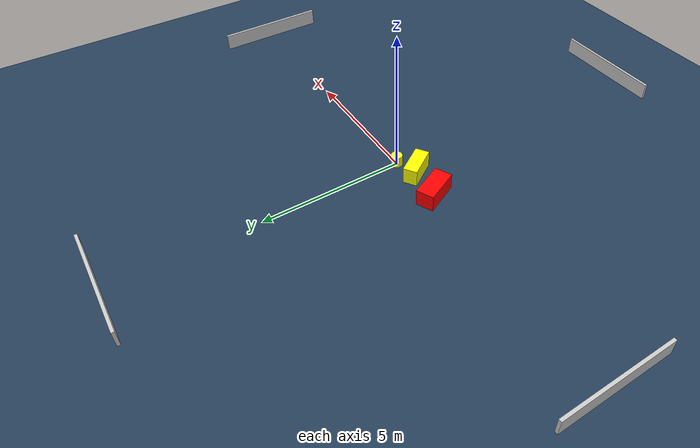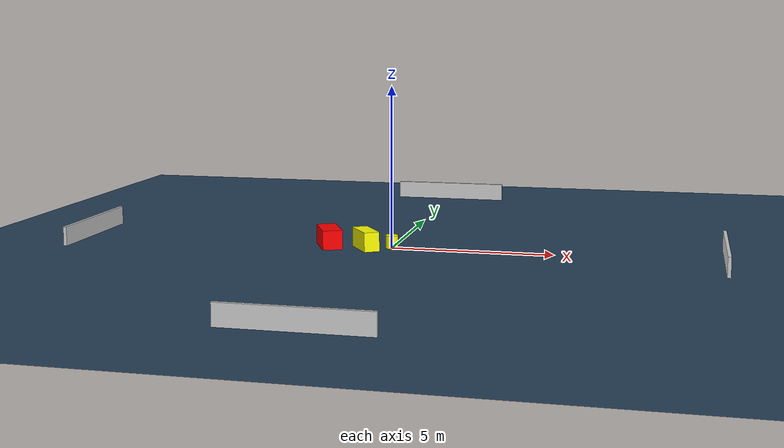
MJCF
<?xml version="1.0" ?>
<mujoco model="generated_environment">
  <option timestep="0.01" integrator="RK4" cone="elliptic"/>
  <default>
    <geom density="1"/>
  </default>
  <asset>
    <texture builtin="gradient" height="3072" name="skybox" rgb1="0.3 0.5 0.7" rgb2="0 0 0" type="skybox" width="512"/>
    <texture builtin="checker" height="300" name="groundplane" rgb1="0.2 0.3 0.4" rgb2="0.1 0.2 0.3" type="2d" width="300"/>
    <material name="groundplane" reflectance="0.2" texrepeat="5 5" texture="groundplane"/>
  </asset>
  <worldbody>
    <light dir="0 0 -1" directional="true" pos="0 0 1.5"/>
    <geom condim="3" friction="0.5 0.005 0.001" material="groundplane" name="floor" pos="0 0 0" size="0 0 0.05" type="plane"/>
    <body name="walls">
      <geom name="wall_1" condim="4" pos="-10.0 0.0 0.3" rgba="0.800000011920929 0.800000011920929 0.800000011920929 1.0" size="0.05 2.0 0.3" type="box"/>
      <geom name="wall_2" condim="4" pos="10.0 0.0 0.3" rgba="0.800000011920929 0.800000011920929 0.800000011920929 1.0" size="0.05 2.0 0.3" type="box"/>
      <geom name="wall_3" condim="4" pos="0.0 -10.0 0.3" rgba="0.800000011920929 0.800000011920929 0.800000011920929 1.0" size="2.0 0.05 0.3" type="box"/>
      <geom name="wall_4" condim="4" pos="0.0 10.0 0.3" rgba="0.800000011920929 0.800000011920929 0.800000011920929 1.0" size="2.0 0.05 0.3" type="box"/>
    </body>
    <body name="robot">
      <joint name="joint_x" type="slide" pos="0 0 0" axis="1 0 0"/>
      <joint name="joint_y" type="slide" pos="0 0 0" axis="0 1 0"/>
      <geom name="robot" type="cylinder" pos="0.0 0.0 0.2" size="0.2 0.2 0.0" mass="5.0" friction="1.0 0.005 0.0001" condim="4" rgba="1.0 1.0 0.0 1.0"/>
    </body>
    <body name="obstacle_1_movable">
      <geom name="obstacle_1_movable" condim="4" pos="-0.7621012744514432 -0.2826638576073888 0.3" euler="0 0 214.00543988812595" friction="0.0 0.005 0.001" rgba="1.0 1.0 0.0 1.0" size="0.24276320546032396 0.5553088487801076 0.3" type="box" mass="0.1"/>
      <joint type="free"/>
    </body>
    <body name="obstacle_2_static">
      <geom name="obstacle_2_static" condim="4" pos="-1.9597437047800448 -0.16310737701680528 0.3" euler="0 0 25.50771220155129" friction="0.0 0.005 0.001" rgba="1.0 0.0 0.0 1.0" size="0.3076629579928492 0.6173004355063596 0.3" type="box"/>
    </body>
  </worldbody>
  <actuator>
    <motor name="actuator_x" joint="joint_x" gear="1" ctrlrange="-1 1"/>
    <motor name="actuator_y" joint="joint_y" gear="1" ctrlrange="-1 1"/>
  </actuator>
</mujoco>
